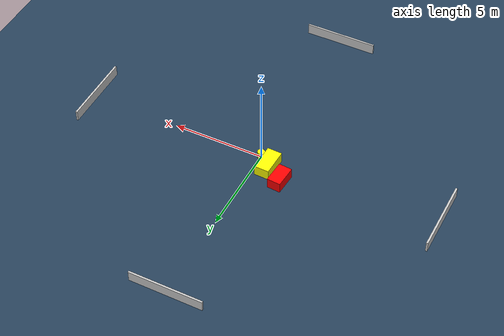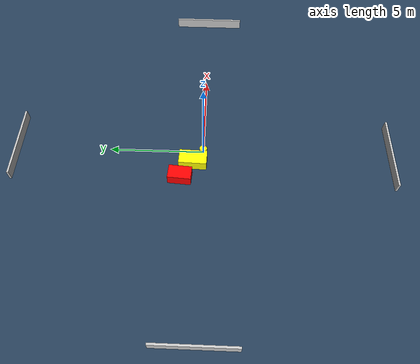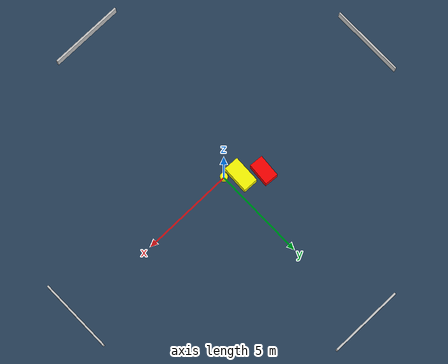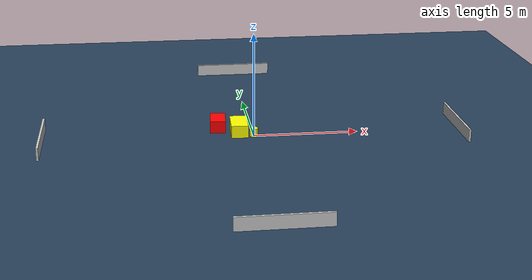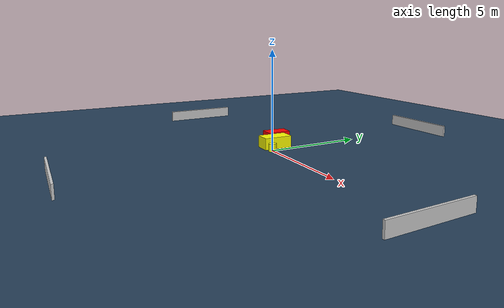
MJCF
<?xml version="1.0" ?>
<mujoco model="generated_environment">
  <option timestep="0.01" integrator="RK4" cone="elliptic"/>
  <default>
    <geom density="1"/>
  </default>
  <asset>
    <texture builtin="gradient" height="3072" name="skybox" rgb1="0.3 0.5 0.7" rgb2="0 0 0" type="skybox" width="512"/>
    <texture builtin="checker" height="300" name="groundplane" rgb1="0.2 0.3 0.4" rgb2="0.1 0.2 0.3" type="2d" width="300"/>
    <material name="groundplane" reflectance="0.2" texrepeat="5 5" texture="groundplane"/>
  </asset>
  <worldbody>
    <light dir="0 0 -1" directional="true" pos="0 0 1.5"/>
    <geom condim="3" friction="0.5 0.005 0.001" material="groundplane" name="floor" pos="0 0 0" size="0 0 0.05" type="plane"/>
    <body name="walls">
      <geom name="wall_1" condim="4" pos="-10.0 0.0 0.3" rgba="0.800000011920929 0.800000011920929 0.800000011920929 1.0" size="0.05 2.0 0.3" type="box"/>
      <geom name="wall_2" condim="4" pos="10.0 0.0 0.3" rgba="0.800000011920929 0.800000011920929 0.800000011920929 1.0" size="0.05 2.0 0.3" type="box"/>
      <geom name="wall_3" condim="4" pos="0.0 -10.0 0.3" rgba="0.800000011920929 0.800000011920929 0.800000011920929 1.0" size="2.0 0.05 0.3" type="box"/>
      <geom name="wall_4" condim="4" pos="0.0 10.0 0.3" rgba="0.800000011920929 0.800000011920929 0.800000011920929 1.0" size="2.0 0.05 0.3" type="box"/>
    </body>
    <body name="robot">
      <joint name="joint_x" type="slide" pos="0 0 0" axis="1 0 0"/>
      <joint name="joint_y" type="slide" pos="0 0 0" axis="0 1 0"/>
      <geom name="robot" type="cylinder" pos="0.0 0.0 0.2" size="0.2 0.2 0.0" mass="5.0" friction="1.0 0.005 0.0001" condim="4" rgba="1.0 1.0 0.0 1.0"/>
    </body>
    <body name="obstacle_1_movable">
      <geom name="obstacle_1_movable" condim="4" pos="-0.6608233062702424 0.5219462420103854 0.3" euler="0 0 178.08663547439215" friction="0.0 0.005 0.001" rgba="1.0 1.0 0.0 1.0" size="0.40416240706164097 0.7350765179156227 0.3" type="box" mass="0.1"/>
      <joint type="free"/>
    </body>
    <body name="obstacle_2_static">
      <geom name="obstacle_2_static" condim="4" pos="-1.6249327060375918 1.1562416460559861 0.3" euler="0 0 265.95766215410566" friction="0.0 0.005 0.001" rgba="1.0 0.0 0.0 1.0" size="0.6083702877787738 0.37040698291585106 0.3" type="box"/>
    </body>
  </worldbody>
  <actuator>
    <motor name="actuator_x" joint="joint_x" gear="1" ctrlrange="-1 1"/>
    <motor name="actuator_y" joint="joint_y" gear="1" ctrlrange="-1 1"/>
  </actuator>
</mujoco>
